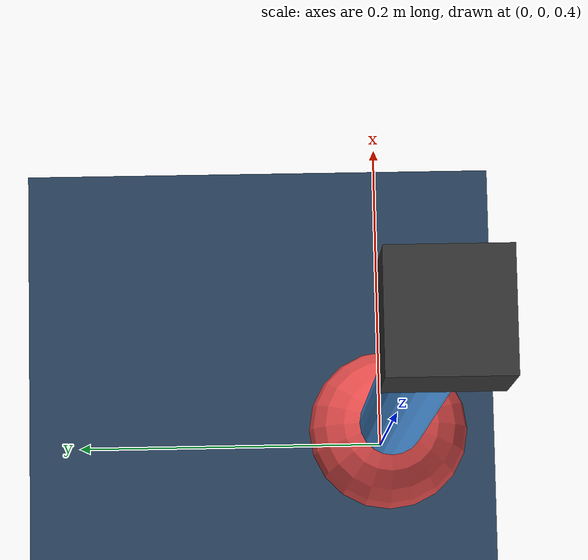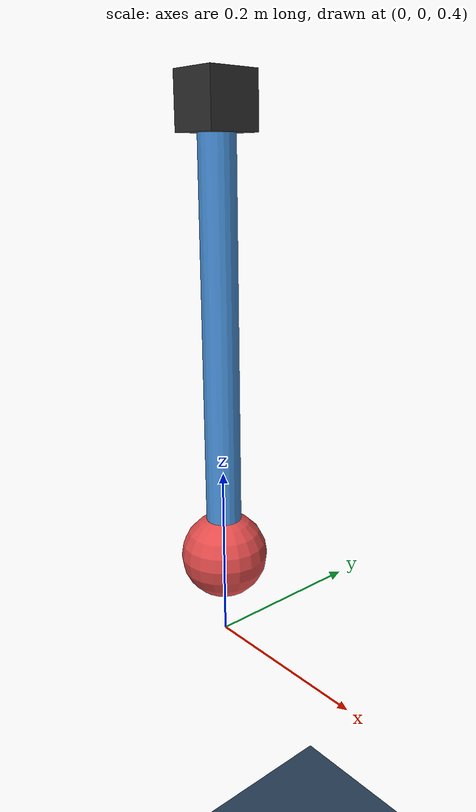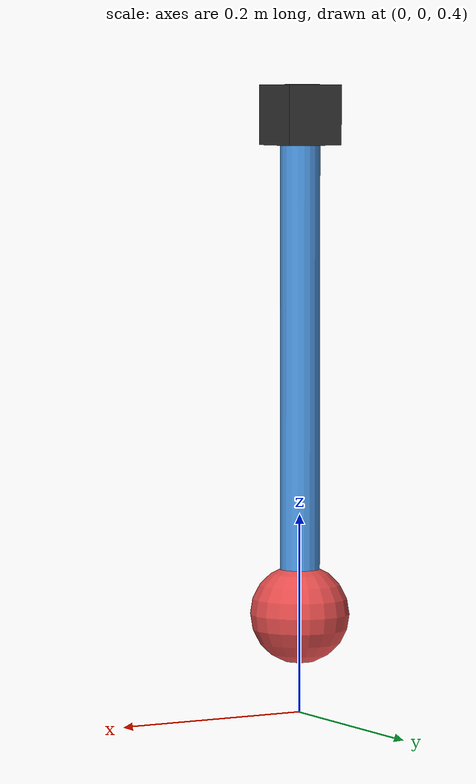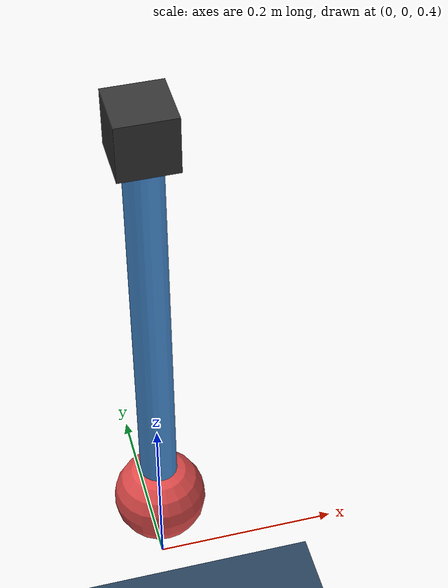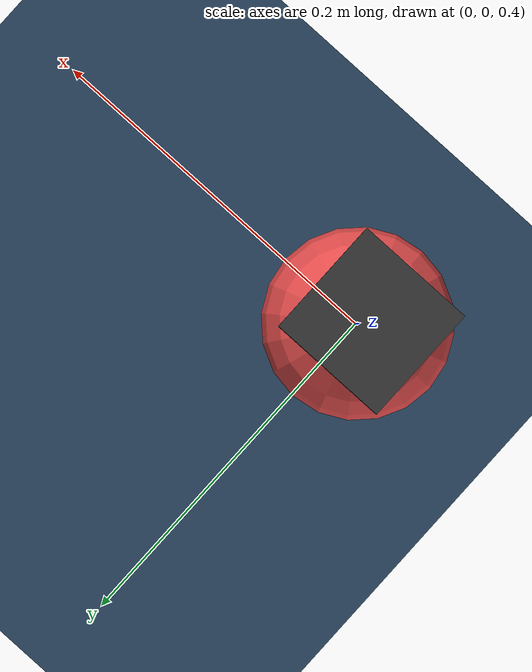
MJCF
<?xml version="1.0" ?>
<mujoco model="pendulum">
  <option timestep="0.002" gravity="0 0 -9.81" integrator="RK4"/>

  <visual>
    <headlight diffuse="0.6 0.6 0.6" ambient="0.3 0.3 0.3" specular="0 0 0"/>
    <rgba haze="0.15 0.25 0.35 1"/>
    <global azimuth="90" elevation="-10"/>
  </visual>

  <asset>
    <texture type="skybox" builtin="gradient" rgb1="0.3 0.5 0.7" rgb2="0 0 0" width="512" height="3072"/>
    <texture type="2d" name="groundplane" builtin="checker" mark="edge"
             rgb1="0.2 0.3 0.4" rgb2="0.1 0.2 0.3" markrgb="0.8 0.8 0.8"
             width="300" height="300"/>
    <material name="groundplane" texture="groundplane" texuniform="true" texrepeat="5 5" reflectance="0.2"/>
  </asset>

  <worldbody>
    <light pos="0 -2 2" dir="0 1 -1" directional="true"/>
    <geom name="floor" type="plane" size="0 0 0.05" material="groundplane"/>

    <!-- 支点となる固定ボディ (可視化用の小さい立方体, 接触無効) -->
    <body name="pivot" pos="0 0 1">
      <geom type="box" size="0.03 0.03 0.03" rgba="0.2 0.2 0.2 1"
            contype="0" conaffinity="0"/>

      <!-- ヒンジ関節付きアーム (振子なので接触判定は不要) -->
      <body name="arm" pos="0 0 0">
        <joint name="hinge" type="hinge" axis="0 1 0" damping="0.001"/>
        <geom name="arm_shaft" type="capsule" fromto="0 0 0 0 0 -0.5"
              size="0.02" rgba="0.3 0.6 0.9 1" mass="0.05"
              contype="0" conaffinity="0"/>
        <body name="tip" pos="0 0 -0.5">
          <geom name="tip_mass" type="sphere" size="0.05" rgba="0.9 0.3 0.3 1" mass="0.3"
                contype="0" conaffinity="0"/>
        </body>
      </body>
    </body>
  </worldbody>
</mujoco>
